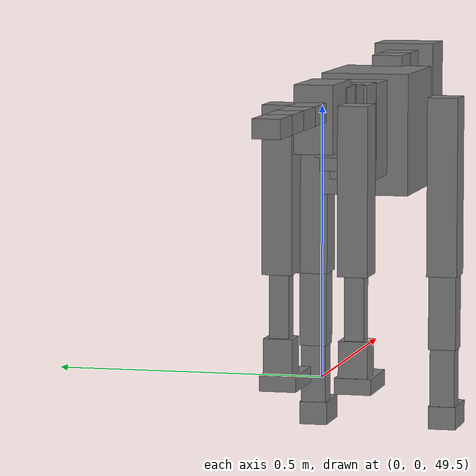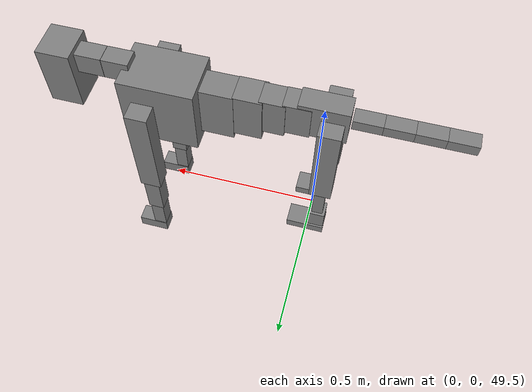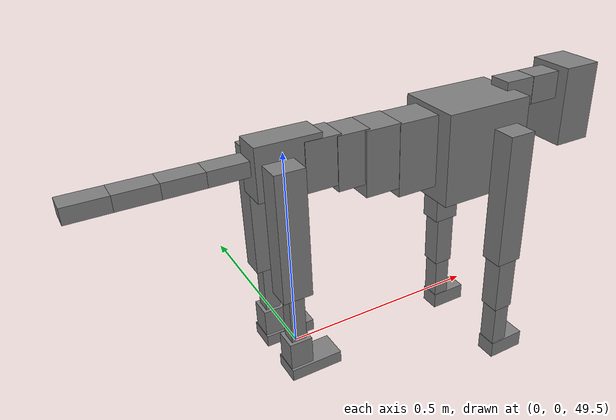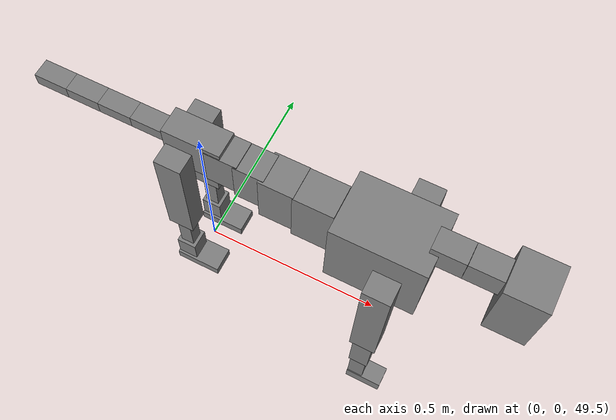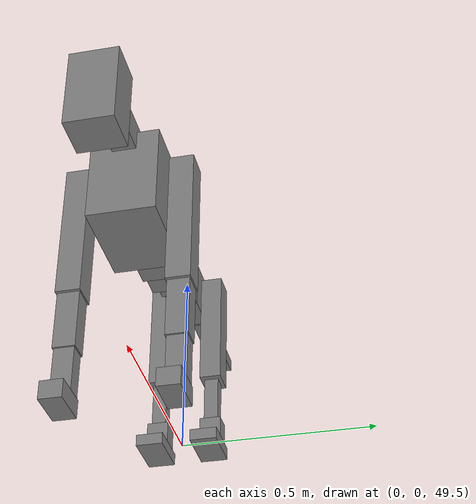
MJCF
<mujoco model="dog">

    <default>
        <joint armature="0.02" stiffness="1" damping="0.2" limited="true"/>
        <geom condim="3" friction="1 0.05 0.05" margin="0.01"/>
        <motor ctrllimited="true" ctrlrange="-1.0 1.0" forcelimited="true" gear="50"/>
    </default>

    <compiler inertiafromgeom="true" angle="radian"/>

    <option timestep="0.016" iterations="50" tolerance="1e-10" solver="Newton" jacobian="dense" cone="pyramidal"/>

    <size nconmax="20000" njmax="60000" nstack="5000000"/>
    <visual>
        <map force="0.1" zfar="30"/>
        <rgba haze="0.15 0.25 0.35 1"/>
        <quality shadowsize="2048"/>
        <global offwidth="800" offheight="800"/>
    </visual>

    <asset>
        <texture type="skybox" builtin="gradient" rgb1="0.3 0.5 0.7" rgb2="0 0 0" width="512" height="512"/>
        <texture name="texplane" type="2d" builtin="checker" rgb1=".2 .3 .4" rgb2=".1 0.15 0.2" width="512" height="512"
                 mark="cross" markrgb=".8 .8 .8"/>
        <texture name="texgeom" type="cube" builtin="flat" mark="cross" width="127" height="1278" rgb1="0.8 0.6 0.4"
                 rgb2="0.8 0.6 0.4" markrgb="1 1 1" random="0.01"/>

        <material name="matplane" reflectance="0.3" texture="texplane" texrepeat="1 1" texuniform="true"/>
        <material name="matgeom" texture="texgeom" texuniform="true" rgba="0.8 0.6 .4 1"/>
    </asset>

    <worldbody>
        <geom name="floor" pos="0 0 0" size="0 0 .25" type="plane" material="matplane" condim="3"/>

        <light directional="false" diffuse=".2 .2 .2" specular="0 0 0" pos="0 0 5" dir="0 0 -1" castshadow="false"/>
        <light mode="targetbodycom" target="torso" directional="false" diffuse=".8 .8 .8" specular="0.3 0.3 0.3"
               pos="0 0 4.0" dir="0 0 -1"/>

        <body name="root" pos="0 0 50">
            <freejoint name="root_1"/>
            <geom type="box" pos="0 0 -0.02" size="0.0774  0.0358  0.063" density="2030"/>

            <body name="spine1" pos="0.054 0 0">
                <joint name="spine1_y" axis="0 1 0" range="0 0.7" limited="true"/>
                <geom type="box" pos="0.02375 0 -0.03" size="0.04375  0.0375  0.05985" density="2030"/>

                <body name="spine2" pos="0.0612 0 0">
                    <joint name="spine2_y" axis="0 1 0" range="-0.15 0.15" limited="true"/>
                    <geom type="box" pos="0.03555  0  -0.04" size="0.04055  0.039  0.06615" density="2030"/>

                    <body name="spine3" pos="0.0730 0 0">
                        <joint name="spine3_y" axis="0 1 0" range="-0.15 0.15" limited="true"/>
                        <geom type="box" pos="0.03555  0  -0.057" size="0.04555  0.0445  0.081" density="2030"/>

                        <body name="spine4" pos="0.0780 0 0">
                            <joint name="spine4_y" axis="0 1 0" range="-0.15 0.15" limited="true"/>
                            <geom type="box" pos="0.05265  0  -0.07" size="0.05265  0.045  0.09135" density="2030"/>

                            <body name="torso" pos="0.1082 0 0">
                                <joint name="torso_y" axis="0 1 0" range="-0.15 0.15" limited="true"/>
                                <geom type="box" pos="0.11925  0  -0.085" size="0.11925  0.085  0.11745"
                                      density="2030"/>

                                <body name="neck1" pos="0.2160  0   0.0180">
                                    <joint name="neck1_y" axis="0 1 0" range="-1.2  -1" limited="true"/>
                                    <geom type="box" pos="0.0423  0  0" size="0.0423  0.03  0.036" density="2325"/>

                                    <body name="neck2" pos="0.0853  0  0">
                                        <joint name="neck2_y" axis="0 1 0" range="0.1  0" limited="true"/>
                                        <geom type="box" pos="0.0423  0  0" size="0.0423  0.03  0.036" density="2325"/>

                                        <body name="head" pos="0.0853  0  0">
                                            <joint name="head_y" axis="0 1 0" range="-0.3  -0.2" limited="true"/>
                                            <geom type="box" pos="0.0531  0  -0.055" size="0.0531  0.06  0.1044"
                                                  density="4030"/>

                                        </body>
                                    </body>
                                </body>

                                <body name="front_shoulder" pos="0.156  0   -0.0480">
                                    <joint name="front_shoulder_y" axis="0 1 0" range="-1 1.5" limited="true"/>
                                    <geom type="box" pos="0 0.13 -0.1496" size="0.0350  0.0300  0.1762" density="1158"/>
                                    <geom type="box" pos="0 -0.13 -0.1496" size="0.0350  0.0300  0.1762"
                                          density="1158"/>

                                    <body name="front_elbow" pos="0  0  -0.2992">
                                        <joint name="front_elbow_y" axis="0 1 0" range="-2 0" limited="true"/>
                                        <geom type="box" pos="0 0.13 -0.0861" size="0.0265  0.0271  0.0861"
                                              density="1081"/>
                                        <geom type="box" pos="0 -0.13 -0.0861" size="0.0265  0.0271  0.0861"
                                              density="1081"/>

                                        <body name="front_wrist" pos="0  0  -0.1723">
                                            <joint name="front_wrist_y" axis="0 1 0" range="-0.2 0" limited="true"/>
                                            <geom type="box" pos="0 0.13 -0.0643" size="0.0220  0.0245  0.0775"
                                                  density="1664"/>
                                            <geom type="box" pos="0 -0.13 -0.0643" size="0.0220  0.0245  0.0775"
                                                  density="1664"/>

                                            <body name="front_finger_end" pos="0  0  -0.1287">
                                                <joint name="front_finger_y" axis="0 1 0" range="-0.4 1"
                                                       limited="true"/>
                                                <geom type="box" pos="0.0274  0.13  -0.0076"
                                                      size="0.0501  0.0274  0.0226" density="1515"/>
                                                <geom type="box" pos="0.0274  -0.13  -0.0076"
                                                      size="0.0501  0.0274  0.0226" density="1515"/>

                                            </body>

                                        </body>
                                    </body>
                                </body>

                            </body>
                        </body>
                    </body>
                </body>
            </body>

            <body name="back_hip" pos="-0.03 0 -0.018">
                <joint name="back_hip_y" axis="0 1 0" range="-1.5 0.3" limited="true"/>
                <geom type="box" pos="0 0.07 -0.1324" size="0.0355  0.0278  0.1552" density="1154"/>
                <geom type="box" pos="0 -0.07 -0.1324" size="0.0355  0.0278  0.1552" density="1154"/>

                <body name="back_knee" pos="0  0  -0.2648">
                    <joint name="back_knee_y" axis="0 1 0" range="0 2.8" limited="true"/>
                    <geom type="box" pos="0 0.07 -0.0764" size="0.0185  0.0182  0.0920" density="1227"/>
                    <geom type="box" pos="0 -0.07 -0.0764" size="0.0185  0.0182  0.0920" density="1227"/>

                    <body name="back_ankle" pos="0  0  -0.1528">
                        <joint name="back_ankle_y" axis="0 1 0" range="-2.2 0" limited="true"/>
                        <geom type="box" pos="0 0.07 -0.0356" size="0.0273  0.0273  0.0469" density="1284"/>
                        <geom type="box" pos="0 -0.07 -0.0356" size="0.0273  0.0273  0.0469" density="1284"/>

                        <body name="back_toe_end" pos="0  0  -0.0713">
                            <joint name="back_toe_y" axis="0 1 0" range="-0.4 1" limited="true"/>
                            <geom type="box" pos="0.0342  0.07  0.0002" size="0.0628  0.0342  0.0148" density="1515"/>
                            <geom type="box" pos="0.0342  -0.07  0.0002" size="0.0628  0.0342  0.0148" density="1515"/>

                        </body>
                    </body>
                </body>
            </body>

            <body name="tail1" pos="-0.074 0 -0.006">
                <joint name="tail1_y" axis="0 1 0" range="-0.2 0.2" limited="true"/>
                <geom type="box" pos="-0.0536  0  0" size="0.045  0.025  0.0175" density="1587"/>

                <body name="tail2" pos="-0.09 0 0">
                    <joint name="tail2_y" axis="0 1 0" range="-0.2 0.2" limited="true"/>
                    <geom type="box" pos="-0.0536  0  0" size="0.045  0.025  0.0175" density="1587"/>

                    <body name="tail3" pos="-0.09 0 0">
                        <joint name="tail3_y" axis="0 1 0" range="-0.2 0.2" limited="true"/>
                        <geom type="box" pos="-0.0536  0  0" size="0.045  0.025  0.0175" density="1587"/>

                        <body name="tail4" pos="-0.09 0 0">
                            <joint name="tail4_y" axis="0 1 0" range="-0.2 0.2" limited="true"/>
                            <geom type="box" pos="-0.0536  0  0" size="0.045  0.025  0.0175" density="1587"/>

                        </body>
                    </body>
                </body>
            </body>
        </body>
    </worldbody>

    <actuator>
        <motor joint="spine1_y" forcerange="-150 150     "/>
        <motor joint="spine2_y" forcerange="-150 150     "/>
        <motor joint="spine3_y" forcerange="-150 150     "/>
        <motor joint="spine4_y" forcerange="-150 150     "/>
        <motor joint="torso_y" forcerange="-150 150     "/>
        <motor joint="neck1_y" forcerange="-100 100       "/>
        <motor joint="neck2_y" forcerange="-100 100       "/>
        <motor joint="head_y" forcerange="-150 150       "/>
        <motor joint="front_shoulder_y" forcerange="-122.67 177.01"/>
        <motor joint="front_elbow_y" forcerange="-190.68 106.28"/>
        <motor joint="front_wrist_y" forcerange="-86.90 108.76"/>
        <motor joint="front_finger_y" forcerange="-51.66 54.22"/>
        <motor joint="back_hip_y" forcerange="-212.29 358.66"/>
        <motor joint="back_knee_y" forcerange="-210.43 254.53"/>
        <motor joint="back_angle_y" forcerange="-156.76 179.79"/>
        <motor joint="back_toe_y" forcerange="-89.70 104.18"/>
        <motor joint="tail1_y" forcerange="-50 50     "/>
        <motor joint="tail2_y" forcerange="-50 50     "/>
        <motor joint="tail3_y" forcerange="-50 50     "/>
        <motor joint="tail4_y" forcerange="-50 50     "/>
    </actuator>
</mujoco>
